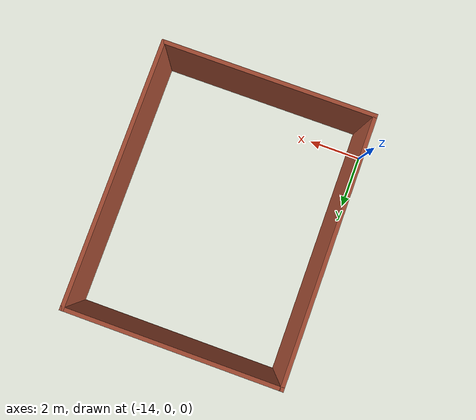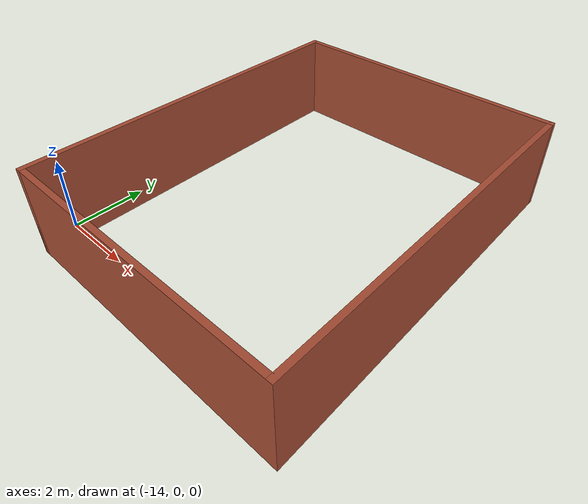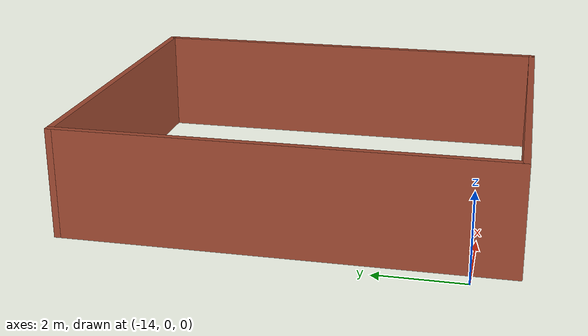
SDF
<?xml version='1.0'?>
<sdf version='1.6'>
  <model name='model_room'>
    <pose frame=''>-9.63683 3.98999 0 0 -0 0</pose>
    <link name='Wall_18'>
      <collision name='Wall_18_Collision'>
        <geometry>
          <box>
            <size>10 0.15 2.5</size>
          </box>
        </geometry>
        <pose frame=''>0 0 1.25 0 -0 0</pose>
      </collision>
      <visual name='Wall_18_Visual'>
        <pose frame=''>0 0 1.25 0 -0 0</pose>
        <geometry>
          <box>
            <size>10 0.15 2.5</size>
          </box>
        </geometry>
        <material>
          <script>
            <uri>file://media/materials/scripts/gazebo.material</uri>
            <name>Gazebo/Bricks</name>
          </script>
          <ambient>1 1 1 1</ambient>
        </material>
        <meta>
          <layer>0</layer>
        </meta>
      </visual>
      <pose frame=''>-3.925 -0 0 0 -0 -1.5708</pose>
    </link>
    <link name='Wall_19'>
      <collision name='Wall_19_Collision'>
        <geometry>
          <box>
            <size>8 0.15 2.5</size>
          </box>
        </geometry>
        <pose frame=''>0 0 1.25 0 -0 0</pose>
      </collision>
      <visual name='Wall_19_Visual'>
        <pose frame=''>0 0 1.25 0 -0 0</pose>
        <geometry>
          <box>
            <size>8 0.15 2.5</size>
          </box>
        </geometry>
        <material>
          <script>
            <uri>file://media/materials/scripts/gazebo.material</uri>
            <name>Gazebo/Bricks</name>
          </script>
          <ambient>1 1 1 1</ambient>
        </material>
        <meta>
          <layer>0</layer>
        </meta>
      </visual>
      <pose frame=''>0 -4.925 0 0 -0 0</pose>
    </link>
    <link name='Wall_20'>
      <collision name='Wall_20_Collision'>
        <geometry>
          <box>
            <size>10 0.15 2.5</size>
          </box>
        </geometry>
        <pose frame=''>0 0 1.25 0 -0 0</pose>
      </collision>
      <visual name='Wall_20_Visual'>
        <pose frame=''>0 0 1.25 0 -0 0</pose>
        <geometry>
          <box>
            <size>10 0.15 2.5</size>
          </box>
        </geometry>
        <material>
          <script>
            <uri>file://media/materials/scripts/gazebo.material</uri>
            <name>Gazebo/Bricks</name>
          </script>
          <ambient>1 1 1 1</ambient>
        </material>
        <meta>
          <layer>0</layer>
        </meta>
      </visual>
      <pose frame=''>3.925 -0 0 0 -0 1.5708</pose>
    </link>
    <link name='Wall_21'>
      <collision name='Wall_21_Collision'>
        <geometry>
          <box>
            <size>8 0.15 2.5</size>
          </box>
        </geometry>
        <pose frame=''>0 0 1.25 0 -0 0</pose>
      </collision>
      <visual name='Wall_21_Visual'>
        <pose frame=''>0 0 1.25 0 -0 0</pose>
        <geometry>
          <box>
            <size>8 0.15 2.5</size>
          </box>
        </geometry>
        <material>
          <script>
            <uri>file://media/materials/scripts/gazebo.material</uri>
            <name>Gazebo/Bricks</name>
          </script>
          <ambient>1 1 1 1</ambient>
        </material>
        <meta>
          <layer>0</layer>
        </meta>
      </visual>
      <pose frame=''>0 4.925 0 0 -0 3.14159</pose>
    </link>
    <static>1</static>
  </model>
</sdf>
